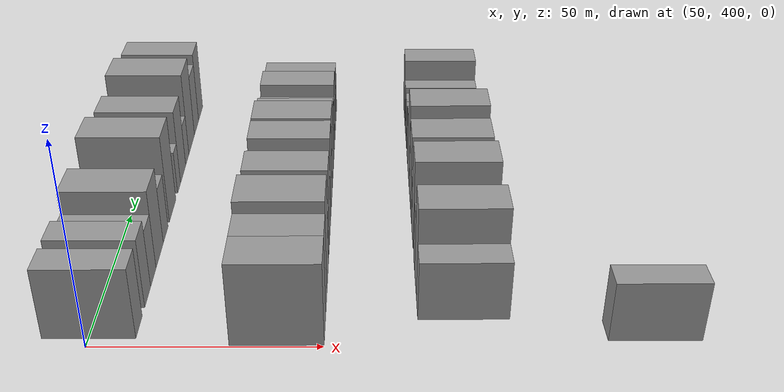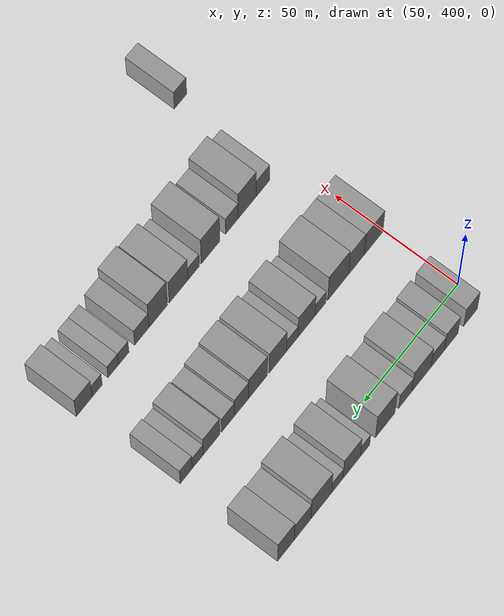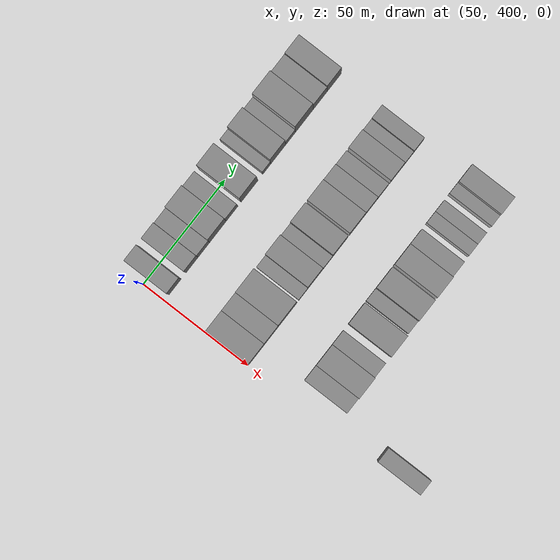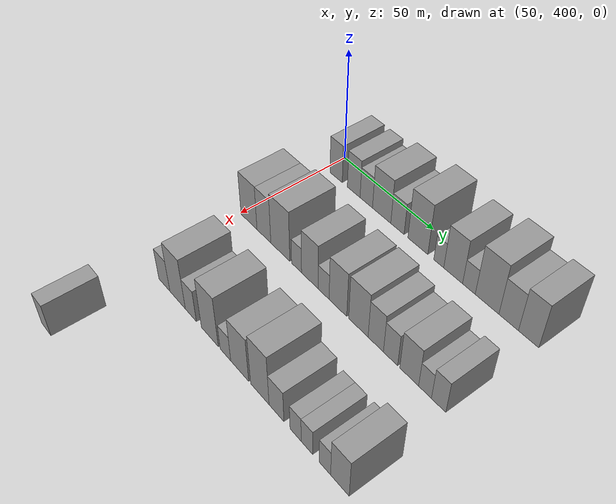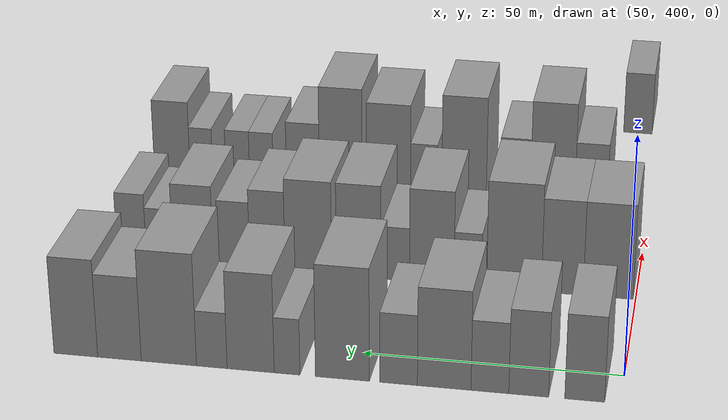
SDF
<sdf version="1.6">
 <world name="default">
  <model name="building_103">
   <static>1</static>
   <pose>50.0000 406.6190 0 0.000000 0.000000 0.000000</pose>
   <link name="link">
    <pose>0 0 9.00 0 0 0</pose>
    <collision name="collision"><geometry><box><size>20.0000 7.4011 18.0000</size></box></geometry></collision>
    <visual name="visual">
     <cast_shadows>0</cast_shadows>
     <geometry><box><size>20.0000 7.4011 18.0000</size></box></geometry>
     <material>
      <script>
       <uri>model://grey_wall/materials/scripts</uri>
       <uri>model://grey_wall/materials/textures</uri>
       <name>vrc/grey_wall</name>
      </script>
     </material>
    </visual>
   </link>
  </model>
  <model name="building_104">
   <static>1</static>
   <pose>50.0000 417.0313 0 0.000000 0.000000 0.000000</pose>
   <link name="link">
    <pose>0 0 9.00 0 0 0</pose>
    <collision name="collision"><geometry><box><size>20.0000 7.4235 18.0000</size></box></geometry></collision>
    <visual name="visual">
     <cast_shadows>0</cast_shadows>
     <geometry><box><size>20.0000 7.4235 18.0000</size></box></geometry>
     <material>
      <script>
       <uri>model://grey_wall/materials/scripts</uri>
       <uri>model://grey_wall/materials/textures</uri>
       <name>vrc/grey_wall</name>
      </script>
     </material>
    </visual>
   </link>
  </model>
  <model name="building_105">
   <static>1</static>
   <pose>50.0000 424.2901 0 0.000000 0.000000 0.000000</pose>
   <link name="link">
    <pose>0 0 7.50 0 0 0</pose>
    <collision name="collision"><geometry><box><size>20.0000 7.0942 15.0000</size></box></geometry></collision>
    <visual name="visual">
     <cast_shadows>0</cast_shadows>
     <geometry><box><size>20.0000 7.0942 15.0000</size></box></geometry>
     <material>
      <script>
       <uri>model://grey_wall/materials/scripts</uri>
       <uri>model://grey_wall/materials/textures</uri>
       <name>vrc/grey_wall</name>
      </script>
     </material>
    </visual>
   </link>
  </model>
  <model name="building_106">
   <static>1</static>
   <pose>50.0000 432.9012 0 0.000000 0.000000 0.000000</pose>
   <link name="link">
    <pose>0 0 10.50 0 0 0</pose>
    <collision name="collision"><geometry><box><size>20.0000 10.1280 21.0000</size></box></geometry></collision>
    <visual name="visual">
     <cast_shadows>0</cast_shadows>
     <geometry><box><size>20.0000 10.1280 21.0000</size></box></geometry>
     <material>
      <script>
       <uri>model://grey_wall/materials/scripts</uri>
       <uri>model://grey_wall/materials/textures</uri>
       <name>vrc/grey_wall</name>
      </script>
     </material>
    </visual>
   </link>
  </model>
  <model name="building_107">
   <static>1</static>
   <pose>50.0000 441.5331 0 0.000000 0.000000 0.000000</pose>
   <link name="link">
    <pose>0 0 7.50 0 0 0</pose>
    <collision name="collision"><geometry><box><size>20.0000 7.1359 15.0000</size></box></geometry></collision>
    <visual name="visual">
     <cast_shadows>0</cast_shadows>
     <geometry><box><size>20.0000 7.1359 15.0000</size></box></geometry>
     <material>
      <script>
       <uri>model://grey_wall/materials/scripts</uri>
       <uri>model://grey_wall/materials/textures</uri>
       <name>vrc/grey_wall</name>
      </script>
     </material>
    </visual>
   </link>
  </model>
  <model name="building_108">
   <static>1</static>
   <pose>50.0000 452.2621 0 0.000000 0.000000 0.000000</pose>
   <link name="link">
    <pose>0 0 12.00 0 0 0</pose>
    <collision name="collision"><geometry><box><size>20.0000 10.3221 24.0000</size></box></geometry></collision>
    <visual name="visual">
     <cast_shadows>0</cast_shadows>
     <geometry><box><size>20.0000 10.3221 24.0000</size></box></geometry>
     <material>
      <script>
       <uri>model://grey_wall/materials/scripts</uri>
       <uri>model://grey_wall/materials/textures</uri>
       <name>vrc/grey_wall</name>
      </script>
     </material>
    </visual>
   </link>
  </model>
  <model name="building_109">
   <static>1</static>
   <pose>50.0000 462.8993 0 0.000000 0.000000 0.000000</pose>
   <link name="link">
    <pose>0 0 6.00 0 0 0</pose>
    <collision name="collision"><geometry><box><size>20.0000 4.9524 12.0000</size></box></geometry></collision>
    <visual name="visual">
     <cast_shadows>0</cast_shadows>
     <geometry><box><size>20.0000 4.9524 12.0000</size></box></geometry>
     <material>
      <script>
       <uri>model://grey_wall/materials/scripts</uri>
       <uri>model://grey_wall/materials/textures</uri>
       <name>vrc/grey_wall</name>
      </script>
     </material>
    </visual>
   </link>
  </model>
  <model name="building_110">
   <static>1</static>
   <pose>50.0000 469.9442 0 0.000000 0.000000 0.000000</pose>
   <link name="link">
    <pose>0 0 10.50 0 0 0</pose>
    <collision name="collision"><geometry><box><size>20.0000 9.1373 21.0000</size></box></geometry></collision>
    <visual name="visual">
     <cast_shadows>0</cast_shadows>
     <geometry><box><size>20.0000 9.1373 21.0000</size></box></geometry>
     <material>
      <script>
       <uri>model://grey_wall/materials/scripts</uri>
       <uri>model://grey_wall/materials/textures</uri>
       <name>vrc/grey_wall</name>
      </script>
     </material>
    </visual>
   </link>
  </model>
  <model name="building_111">
   <static>1</static>
   <pose>50.0000 477.4980 0 0.000000 0.000000 0.000000</pose>
   <link name="link">
    <pose>0 0 6.00 0 0 0</pose>
    <collision name="collision"><geometry><box><size>20.0000 5.9704 12.0000</size></box></geometry></collision>
    <visual name="visual">
     <cast_shadows>0</cast_shadows>
     <geometry><box><size>20.0000 5.9704 12.0000</size></box></geometry>
     <material>
      <script>
       <uri>model://grey_wall/materials/scripts</uri>
       <uri>model://grey_wall/materials/textures</uri>
       <name>vrc/grey_wall</name>
      </script>
     </material>
    </visual>
   </link>
  </model>
  <model name="building_112">
   <static>1</static>
   <pose>50.0000 485.8997 0 0.000000 0.000000 0.000000</pose>
   <link name="link">
    <pose>0 0 12.00 0 0 0</pose>
    <collision name="collision"><geometry><box><size>20.0000 10.8329 24.0000</size></box></geometry></collision>
    <visual name="visual">
     <cast_shadows>0</cast_shadows>
     <geometry><box><size>20.0000 10.8329 24.0000</size></box></geometry>
     <material>
      <script>
       <uri>model://grey_wall/materials/scripts</uri>
       <uri>model://grey_wall/materials/textures</uri>
       <name>vrc/grey_wall</name>
      </script>
     </material>
    </visual>
   </link>
  </model>
  <model name="building_113">
   <static>1</static>
   <pose>50.0000 495.6223 0 0.000000 0.000000 0.000000</pose>
   <link name="link">
    <pose>0 0 9.00 0 0 0</pose>
    <collision name="collision"><geometry><box><size>20.0000 8.6124 18.0000</size></box></geometry></collision>
    <visual name="visual">
     <cast_shadows>0</cast_shadows>
     <geometry><box><size>20.0000 8.6124 18.0000</size></box></geometry>
     <material>
      <script>
       <uri>model://grey_wall/materials/scripts</uri>
       <uri>model://grey_wall/materials/textures</uri>
       <name>vrc/grey_wall</name>
      </script>
     </material>
    </visual>
   </link>
  </model>
  <model name="building_114">
   <static>1</static>
   <pose>50.0000 504.2723 0 0.000000 0.000000 0.000000</pose>
   <link name="link">
    <pose>0 0 10.50 0 0 0</pose>
    <collision name="collision"><geometry><box><size>20.0000 8.6876 21.0000</size></box></geometry></collision>
    <visual name="visual">
     <cast_shadows>0</cast_shadows>
     <geometry><box><size>20.0000 8.6876 21.0000</size></box></geometry>
     <material>
      <script>
       <uri>model://grey_wall/materials/scripts</uri>
       <uri>model://grey_wall/materials/textures</uri>
       <name>vrc/grey_wall</name>
      </script>
     </material>
    </visual>
   </link>
  </model>
  <model name="building_235">
   <static>1</static>
   <pose>90.0000 405.5497 0 0.000000 0.000000 0.000000</pose>
   <link name="link">
    <pose>0 0 10.50 0 0 0</pose>
    <collision name="collision"><geometry><box><size>20.0000 10.0222 21.0000</size></box></geometry></collision>
    <visual name="visual">
     <cast_shadows>0</cast_shadows>
     <geometry><box><size>20.0000 10.0222 21.0000</size></box></geometry>
     <material>
      <script>
       <uri>model://grey_wall/materials/scripts</uri>
       <uri>model://grey_wall/materials/textures</uri>
       <name>vrc/grey_wall</name>
      </script>
     </material>
    </visual>
   </link>
  </model>
  <model name="building_236">
   <static>1</static>
   <pose>90.0000 414.7801 0 0.000000 0.000000 0.000000</pose>
   <link name="link">
    <pose>0 0 10.50 0 0 0</pose>
    <collision name="collision"><geometry><box><size>20.0000 8.4386 21.0000</size></box></geometry></collision>
    <visual name="visual">
     <cast_shadows>0</cast_shadows>
     <geometry><box><size>20.0000 8.4386 21.0000</size></box></geometry>
     <material>
      <script>
       <uri>model://grey_wall/materials/scripts</uri>
       <uri>model://grey_wall/materials/textures</uri>
       <name>vrc/grey_wall</name>
      </script>
     </material>
    </visual>
   </link>
  </model>
  <model name="building_237">
   <static>1</static>
   <pose>90.0000 424.5723 0 0.000000 0.000000 0.000000</pose>
   <link name="link">
    <pose>0 0 12.00 0 0 0</pose>
    <collision name="collision"><geometry><box><size>20.0000 11.1459 24.0000</size></box></geometry></collision>
    <visual name="visual">
     <cast_shadows>0</cast_shadows>
     <geometry><box><size>20.0000 11.1459 24.0000</size></box></geometry>
     <material>
      <script>
       <uri>model://grey_wall/materials/scripts</uri>
       <uri>model://grey_wall/materials/textures</uri>
       <name>vrc/grey_wall</name>
      </script>
     </material>
    </visual>
   </link>
  </model>
  <model name="building_238">
   <static>1</static>
   <pose>90.0000 433.9766 0 0.000000 0.000000 0.000000</pose>
   <link name="link">
    <pose>0 0 6.00 0 0 0</pose>
    <collision name="collision"><geometry><box><size>20.0000 5.6627 12.0000</size></box></geometry></collision>
    <visual name="visual">
     <cast_shadows>0</cast_shadows>
     <geometry><box><size>20.0000 5.6627 12.0000</size></box></geometry>
     <material>
      <script>
       <uri>model://grey_wall/materials/scripts</uri>
       <uri>model://grey_wall/materials/textures</uri>
       <name>vrc/grey_wall</name>
      </script>
     </material>
    </visual>
   </link>
  </model>
  <model name="building_239">
   <static>1</static>
   <pose>90.0000 441.3888 0 0.000000 0.000000 0.000000</pose>
   <link name="link">
    <pose>0 0 10.50 0 0 0</pose>
    <collision name="collision"><geometry><box><size>20.0000 9.1617 21.0000</size></box></geometry></collision>
    <visual name="visual">
     <cast_shadows>0</cast_shadows>
     <geometry><box><size>20.0000 9.1617 21.0000</size></box></geometry>
     <material>
      <script>
       <uri>model://grey_wall/materials/scripts</uri>
       <uri>model://grey_wall/materials/textures</uri>
       <name>vrc/grey_wall</name>
      </script>
     </material>
    </visual>
   </link>
  </model>
  <model name="building_240">
   <static>1</static>
   <pose>90.0000 448.9365 0 0.000000 0.000000 0.000000</pose>
   <link name="link">
    <pose>0 0 6.00 0 0 0</pose>
    <collision name="collision"><geometry><box><size>20.0000 5.9335 12.0000</size></box></geometry></collision>
    <visual name="visual">
     <cast_shadows>0</cast_shadows>
     <geometry><box><size>20.0000 5.9335 12.0000</size></box></geometry>
     <material>
      <script>
       <uri>model://grey_wall/materials/scripts</uri>
       <uri>model://grey_wall/materials/textures</uri>
       <name>vrc/grey_wall</name>
      </script>
     </material>
    </visual>
   </link>
  </model>
  <model name="building_241">
   <static>1</static>
   <pose>90.0000 456.5096 0 0.000000 0.000000 0.000000</pose>
   <link name="link">
    <pose>0 0 10.50 0 0 0</pose>
    <collision name="collision"><geometry><box><size>20.0000 9.2127 21.0000</size></box></geometry></collision>
    <visual name="visual">
     <cast_shadows>0</cast_shadows>
     <geometry><box><size>20.0000 9.2127 21.0000</size></box></geometry>
     <material>
      <script>
       <uri>model://grey_wall/materials/scripts</uri>
       <uri>model://grey_wall/materials/textures</uri>
       <name>vrc/grey_wall</name>
      </script>
     </material>
    </visual>
   </link>
  </model>
  <model name="building_242">
   <static>1</static>
   <pose>90.0000 466.9818 0 0.000000 0.000000 0.000000</pose>
   <link name="link">
    <pose>0 0 10.50 0 0 0</pose>
    <collision name="collision"><geometry><box><size>20.0000 9.7318 21.0000</size></box></geometry></collision>
    <visual name="visual">
     <cast_shadows>0</cast_shadows>
     <geometry><box><size>20.0000 9.7318 21.0000</size></box></geometry>
     <material>
      <script>
       <uri>model://grey_wall/materials/scripts</uri>
       <uri>model://grey_wall/materials/textures</uri>
       <name>vrc/grey_wall</name>
      </script>
     </material>
    </visual>
   </link>
  </model>
  <model name="building_243">
   <static>1</static>
   <pose>90.0000 475.5731 0 0.000000 0.000000 0.000000</pose>
   <link name="link">
    <pose>0 0 9.00 0 0 0</pose>
    <collision name="collision"><geometry><box><size>20.0000 7.4509 18.0000</size></box></geometry></collision>
    <visual name="visual">
     <cast_shadows>0</cast_shadows>
     <geometry><box><size>20.0000 7.4509 18.0000</size></box></geometry>
     <material>
      <script>
       <uri>model://grey_wall/materials/scripts</uri>
       <uri>model://grey_wall/materials/textures</uri>
       <name>vrc/grey_wall</name>
      </script>
     </material>
    </visual>
   </link>
  </model>
  <model name="building_244">
   <static>1</static>
   <pose>90.0000 482.6487 0 0.000000 0.000000 0.000000</pose>
   <link name="link">
    <pose>0 0 7.50 0 0 0</pose>
    <collision name="collision"><geometry><box><size>20.0000 6.7003 15.0000</size></box></geometry></collision>
    <visual name="visual">
     <cast_shadows>0</cast_shadows>
     <geometry><box><size>20.0000 6.7003 15.0000</size></box></geometry>
     <material>
      <script>
       <uri>model://grey_wall/materials/scripts</uri>
       <uri>model://grey_wall/materials/textures</uri>
       <name>vrc/grey_wall</name>
      </script>
     </material>
    </visual>
   </link>
  </model>
  <model name="building_245">
   <static>1</static>
   <pose>90.0000 491.2784 0 0.000000 0.000000 0.000000</pose>
   <link name="link">
    <pose>0 0 9.00 0 0 0</pose>
    <collision name="collision"><geometry><box><size>20.0000 8.5590 18.0000</size></box></geometry></collision>
    <visual name="visual">
     <cast_shadows>0</cast_shadows>
     <geometry><box><size>20.0000 8.5590 18.0000</size></box></geometry>
     <material>
      <script>
       <uri>model://grey_wall/materials/scripts</uri>
       <uri>model://grey_wall/materials/textures</uri>
       <name>vrc/grey_wall</name>
      </script>
     </material>
    </visual>
   </link>
  </model>
  <model name="building_246">
   <static>1</static>
   <pose>90.0000 498.4065 0 0.000000 0.000000 0.000000</pose>
   <link name="link">
    <pose>0 0 6.00 0 0 0</pose>
    <collision name="collision"><geometry><box><size>20.0000 5.6973 12.0000</size></box></geometry></collision>
    <visual name="visual">
     <cast_shadows>0</cast_shadows>
     <geometry><box><size>20.0000 5.6973 12.0000</size></box></geometry>
     <material>
      <script>
       <uri>model://grey_wall/materials/scripts</uri>
       <uri>model://grey_wall/materials/textures</uri>
       <name>vrc/grey_wall</name>
      </script>
     </material>
    </visual>
   </link>
  </model>
  <model name="building_247">
   <static>1</static>
   <pose>90.0000 504.3689 0 0.000000 0.000000 0.000000</pose>
   <link name="link">
    <pose>0 0 7.50 0 0 0</pose>
    <collision name="collision"><geometry><box><size>20.0000 6.2275 15.0000</size></box></geometry></collision>
    <visual name="visual">
     <cast_shadows>0</cast_shadows>
     <geometry><box><size>20.0000 6.2275 15.0000</size></box></geometry>
     <material>
      <script>
       <uri>model://grey_wall/materials/scripts</uri>
       <uri>model://grey_wall/materials/textures</uri>
       <name>vrc/grey_wall</name>
      </script>
     </material>
    </visual>
   </link>
  </model>
  <model name="building_373">
   <static>1</static>
   <pose>130.0000 412.5269 0 0.000000 0.000000 0.000000</pose>
   <link name="link">
    <pose>0 0 7.50 0 0 0</pose>
    <collision name="collision"><geometry><box><size>20.0000 7.1069 15.0000</size></box></geometry></collision>
    <visual name="visual">
     <cast_shadows>0</cast_shadows>
     <geometry><box><size>20.0000 7.1069 15.0000</size></box></geometry>
     <material>
      <script>
       <uri>model://grey_wall/materials/scripts</uri>
       <uri>model://grey_wall/materials/textures</uri>
       <name>vrc/grey_wall</name>
      </script>
     </material>
    </visual>
   </link>
  </model>
  <model name="building_374">
   <static>1</static>
   <pose>130.0000 420.9258 0 0.000000 0.000000 0.000000</pose>
   <link name="link">
    <pose>0 0 12.00 0 0 0</pose>
    <collision name="collision"><geometry><box><size>20.0000 9.6909 24.0000</size></box></geometry></collision>
    <visual name="visual">
     <cast_shadows>0</cast_shadows>
     <geometry><box><size>20.0000 9.6909 24.0000</size></box></geometry>
     <material>
      <script>
       <uri>model://grey_wall/materials/scripts</uri>
       <uri>model://grey_wall/materials/textures</uri>
       <name>vrc/grey_wall</name>
      </script>
     </material>
    </visual>
   </link>
  </model>
  <model name="building_375">
   <static>1</static>
   <pose>130.0000 429.1087 0 0.000000 0.000000 0.000000</pose>
   <link name="link">
    <pose>0 0 7.50 0 0 0</pose>
    <collision name="collision"><geometry><box><size>20.0000 6.6750 15.0000</size></box></geometry></collision>
    <visual name="visual">
     <cast_shadows>0</cast_shadows>
     <geometry><box><size>20.0000 6.6750 15.0000</size></box></geometry>
     <material>
      <script>
       <uri>model://grey_wall/materials/scripts</uri>
       <uri>model://grey_wall/materials/textures</uri>
       <name>vrc/grey_wall</name>
      </script>
     </material>
    </visual>
   </link>
  </model>
  <model name="building_376">
   <static>1</static>
   <pose>130.0000 440.3710 0 0.000000 0.000000 0.000000</pose>
   <link name="link">
    <pose>0 0 12.00 0 0 0</pose>
    <collision name="collision"><geometry><box><size>20.0000 9.8495 24.0000</size></box></geometry></collision>
    <visual name="visual">
     <cast_shadows>0</cast_shadows>
     <geometry><box><size>20.0000 9.8495 24.0000</size></box></geometry>
     <material>
      <script>
       <uri>model://grey_wall/materials/scripts</uri>
       <uri>model://grey_wall/materials/textures</uri>
       <name>vrc/grey_wall</name>
      </script>
     </material>
    </visual>
   </link>
  </model>
  <model name="building_377">
   <static>1</static>
   <pose>130.0000 449.2761 0 0.000000 0.000000 0.000000</pose>
   <link name="link">
    <pose>0 0 6.00 0 0 0</pose>
    <collision name="collision"><geometry><box><size>20.0000 5.9607 12.0000</size></box></geometry></collision>
    <visual name="visual">
     <cast_shadows>0</cast_shadows>
     <geometry><box><size>20.0000 5.9607 12.0000</size></box></geometry>
     <material>
      <script>
       <uri>model://grey_wall/materials/scripts</uri>
       <uri>model://grey_wall/materials/textures</uri>
       <name>vrc/grey_wall</name>
      </script>
     </material>
    </visual>
   </link>
  </model>
  <model name="building_378">
   <static>1</static>
   <pose>130.0000 457.1550 0 0.000000 0.000000 0.000000</pose>
   <link name="link">
    <pose>0 0 10.50 0 0 0</pose>
    <collision name="collision"><geometry><box><size>20.0000 9.7971 21.0000</size></box></geometry></collision>
    <visual name="visual">
     <cast_shadows>0</cast_shadows>
     <geometry><box><size>20.0000 9.7971 21.0000</size></box></geometry>
     <material>
      <script>
       <uri>model://grey_wall/materials/scripts</uri>
       <uri>model://grey_wall/materials/textures</uri>
       <name>vrc/grey_wall</name>
      </script>
     </material>
    </visual>
   </link>
  </model>
  <model name="building_379">
   <static>1</static>
   <pose>130.0000 467.8586 0 0.000000 0.000000 0.000000</pose>
   <link name="link">
    <pose>0 0 12.00 0 0 0</pose>
    <collision name="collision"><geometry><box><size>20.0000 9.6101 24.0000</size></box></geometry></collision>
    <visual name="visual">
     <cast_shadows>0</cast_shadows>
     <geometry><box><size>20.0000 9.6101 24.0000</size></box></geometry>
     <material>
      <script>
       <uri>model://grey_wall/materials/scripts</uri>
       <uri>model://grey_wall/materials/textures</uri>
       <name>vrc/grey_wall</name>
      </script>
     </material>
    </visual>
   </link>
  </model>
  <model name="building_380">
   <static>1</static>
   <pose>130.0000 476.3832 0 0.000000 0.000000 0.000000</pose>
   <link name="link">
    <pose>0 0 7.50 0 0 0</pose>
    <collision name="collision"><geometry><box><size>20.0000 7.4392 15.0000</size></box></geometry></collision>
    <visual name="visual">
     <cast_shadows>0</cast_shadows>
     <geometry><box><size>20.0000 7.4392 15.0000</size></box></geometry>
     <material>
      <script>
       <uri>model://grey_wall/materials/scripts</uri>
       <uri>model://grey_wall/materials/textures</uri>
       <name>vrc/grey_wall</name>
      </script>
     </material>
    </visual>
   </link>
  </model>
  <model name="building_381">
   <static>1</static>
   <pose>130.0000 485.8040 0 0.000000 0.000000 0.000000</pose>
   <link name="link">
    <pose>0 0 6.00 0 0 0</pose>
    <collision name="collision"><geometry><box><size>20.0000 5.4025 12.0000</size></box></geometry></collision>
    <visual name="visual">
     <cast_shadows>0</cast_shadows>
     <geometry><box><size>20.0000 5.4025 12.0000</size></box></geometry>
     <material>
      <script>
       <uri>model://grey_wall/materials/scripts</uri>
       <uri>model://grey_wall/materials/textures</uri>
       <name>vrc/grey_wall</name>
      </script>
     </material>
    </visual>
   </link>
  </model>
  <model name="building_382">
   <static>1</static>
   <pose>130.0000 491.2211 0 0.000000 0.000000 0.000000</pose>
   <link name="link">
    <pose>0 0 6.00 0 0 0</pose>
    <collision name="collision"><geometry><box><size>20.0000 5.4317 12.0000</size></box></geometry></collision>
    <visual name="visual">
     <cast_shadows>0</cast_shadows>
     <geometry><box><size>20.0000 5.4317 12.0000</size></box></geometry>
     <material>
      <script>
       <uri>model://grey_wall/materials/scripts</uri>
       <uri>model://grey_wall/materials/textures</uri>
       <name>vrc/grey_wall</name>
      </script>
     </material>
    </visual>
   </link>
  </model>
  <model name="building_383">
   <static>1</static>
   <pose>130.0000 499.5328 0 0.000000 0.000000 0.000000</pose>
   <link name="link">
    <pose>0 0 6.00 0 0 0</pose>
    <collision name="collision"><geometry><box><size>20.0000 5.1917 12.0000</size></box></geometry></collision>
    <visual name="visual">
     <cast_shadows>0</cast_shadows>
     <geometry><box><size>20.0000 5.1917 12.0000</size></box></geometry>
     <material>
      <script>
       <uri>model://grey_wall/materials/scripts</uri>
       <uri>model://grey_wall/materials/textures</uri>
       <name>vrc/grey_wall</name>
      </script>
     </material>
    </visual>
   </link>
  </model>
  <model name="building_384">
   <static>1</static>
   <pose>130.0000 506.2227 0 0.000000 0.000000 0.000000</pose>
   <link name="link">
    <pose>0 0 9.00 0 0 0</pose>
    <collision name="collision"><geometry><box><size>20.0000 8.1881 18.0000</size></box></geometry></collision>
    <visual name="visual">
     <cast_shadows>0</cast_shadows>
     <geometry><box><size>20.0000 8.1881 18.0000</size></box></geometry>
     <material>
      <script>
       <uri>model://grey_wall/materials/scripts</uri>
       <uri>model://grey_wall/materials/textures</uri>
       <name>vrc/grey_wall</name>
      </script>
     </material>
    </visual>
   </link>
  </model>
  <model name="building_515">
   <static>1</static>
   <pose>170.0000 405.0901 0 0.000000 0.000000 0.000000</pose>
   <link name="link">
    <pose>0 0 7.50 0 0 0</pose>
    <collision name="collision"><geometry><box><size>20.0000 6.5969 15.0000</size></box></geometry></collision>
    <visual name="visual">
     <cast_shadows>0</cast_shadows>
     <geometry><box><size>20.0000 6.5969 15.0000</size></box></geometry>
     <material>
      <script>
       <uri>model://grey_wall/materials/scripts</uri>
       <uri>model://grey_wall/materials/textures</uri>
       <name>vrc/grey_wall</name>
      </script>
     </material>
    </visual>
   </link>
  </model>
 </world>
</sdf>
